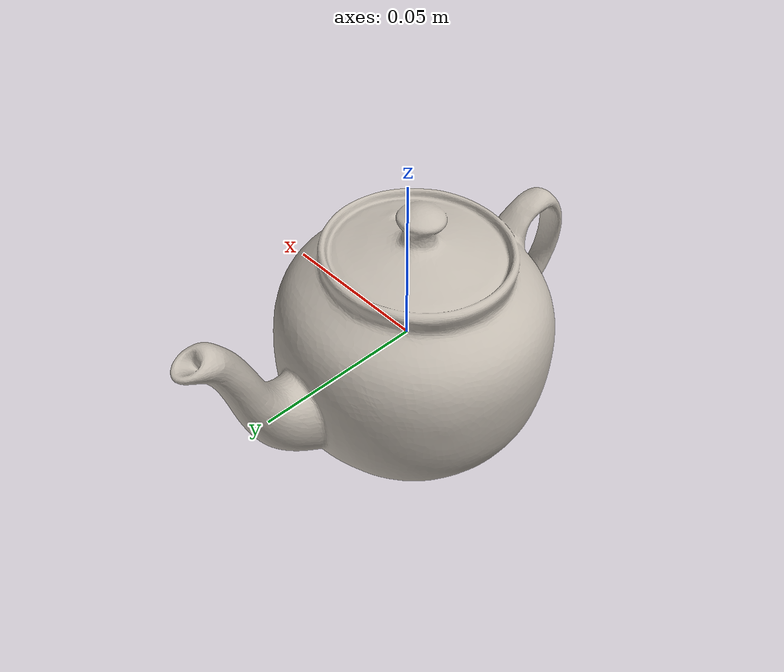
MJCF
<mujoco model="teapot_3">
  <asset>
    <mesh file="visual/model_normalized_0.obj" name="model_normalized_0_vis" scale="0.125 0.125 0.125" refquat="-0.5555702330196022 0.0 0.0 0.8314696123025451"/>
    <mesh file="collision/model_normalized_collision_22.obj" name="model_normalized_collision_22._coll" scale="0.125 0.125 0.125" refquat="-0.5555702330196022 0.0 0.0 0.8314696123025451"/>
    <mesh file="collision/model_normalized_collision_23.obj" name="model_normalized_collision_23._coll" scale="0.125 0.125 0.125" refquat="-0.5555702330196022 0.0 0.0 0.8314696123025451"/>
    <mesh file="collision/model_normalized_collision_21.obj" name="model_normalized_collision_21._coll" scale="0.125 0.125 0.125" refquat="-0.5555702330196022 0.0 0.0 0.8314696123025451"/>
    <mesh file="collision/model_normalized_collision_20.obj" name="model_normalized_collision_20._coll" scale="0.125 0.125 0.125" refquat="-0.5555702330196022 0.0 0.0 0.8314696123025451"/>
    <mesh file="collision/model_normalized_collision_24.obj" name="model_normalized_collision_24._coll" scale="0.125 0.125 0.125" refquat="-0.5555702330196022 0.0 0.0 0.8314696123025451"/>
    <mesh file="collision/model_normalized_collision_30.obj" name="model_normalized_collision_30._coll" scale="0.125 0.125 0.125" refquat="-0.5555702330196022 0.0 0.0 0.8314696123025451"/>
    <mesh file="collision/model_normalized_collision_18.obj" name="model_normalized_collision_18._coll" scale="0.125 0.125 0.125" refquat="-0.5555702330196022 0.0 0.0 0.8314696123025451"/>
    <mesh file="collision/model_normalized_collision_19.obj" name="model_normalized_collision_19._coll" scale="0.125 0.125 0.125" refquat="-0.5555702330196022 0.0 0.0 0.8314696123025451"/>
    <mesh file="collision/model_normalized_collision_31.obj" name="model_normalized_collision_31._coll" scale="0.125 0.125 0.125" refquat="-0.5555702330196022 0.0 0.0 0.8314696123025451"/>
    <mesh file="collision/model_normalized_collision_25.obj" name="model_normalized_collision_25._coll" scale="0.125 0.125 0.125" refquat="-0.5555702330196022 0.0 0.0 0.8314696123025451"/>
    <mesh file="collision/model_normalized_collision_27.obj" name="model_normalized_collision_27._coll" scale="0.125 0.125 0.125" refquat="-0.5555702330196022 0.0 0.0 0.8314696123025451"/>
    <mesh file="collision/model_normalized_collision_26.obj" name="model_normalized_collision_26._coll" scale="0.125 0.125 0.125" refquat="-0.5555702330196022 0.0 0.0 0.8314696123025451"/>
    <mesh file="collision/model_normalized_collision_9.obj" name="model_normalized_collision_9._coll" scale="0.125 0.125 0.125" refquat="-0.5555702330196022 0.0 0.0 0.8314696123025451"/>
    <mesh file="collision/model_normalized_collision_8.obj" name="model_normalized_collision_8._coll" scale="0.125 0.125 0.125" refquat="-0.5555702330196022 0.0 0.0 0.8314696123025451"/>
    <mesh file="collision/model_normalized_collision_6.obj" name="model_normalized_collision_6._coll" scale="0.125 0.125 0.125" refquat="-0.5555702330196022 0.0 0.0 0.8314696123025451"/>
    <mesh file="collision/model_normalized_collision_7.obj" name="model_normalized_collision_7._coll" scale="0.125 0.125 0.125" refquat="-0.5555702330196022 0.0 0.0 0.8314696123025451"/>
    <mesh file="collision/model_normalized_collision_5.obj" name="model_normalized_collision_5._coll" scale="0.125 0.125 0.125" refquat="-0.5555702330196022 0.0 0.0 0.8314696123025451"/>
    <mesh file="collision/model_normalized_collision_4.obj" name="model_normalized_collision_4._coll" scale="0.125 0.125 0.125" refquat="-0.5555702330196022 0.0 0.0 0.8314696123025451"/>
    <mesh file="collision/model_normalized_collision_0.obj" name="model_normalized_collision_0._coll" scale="0.125 0.125 0.125" refquat="-0.5555702330196022 0.0 0.0 0.8314696123025451"/>
    <mesh file="collision/model_normalized_collision_1.obj" name="model_normalized_collision_1._coll" scale="0.125 0.125 0.125" refquat="-0.5555702330196022 0.0 0.0 0.8314696123025451"/>
    <mesh file="collision/model_normalized_collision_3.obj" name="model_normalized_collision_3._coll" scale="0.125 0.125 0.125" refquat="-0.5555702330196022 0.0 0.0 0.8314696123025451"/>
    <mesh file="collision/model_normalized_collision_2.obj" name="model_normalized_collision_2._coll" scale="0.125 0.125 0.125" refquat="-0.5555702330196022 0.0 0.0 0.8314696123025451"/>
    <mesh file="collision/model_normalized_collision_17.obj" name="model_normalized_collision_17._coll" scale="0.125 0.125 0.125" refquat="-0.5555702330196022 0.0 0.0 0.8314696123025451"/>
    <mesh file="collision/model_normalized_collision_16.obj" name="model_normalized_collision_16._coll" scale="0.125 0.125 0.125" refquat="-0.5555702330196022 0.0 0.0 0.8314696123025451"/>
    <mesh file="collision/model_normalized_collision_28.obj" name="model_normalized_collision_28._coll" scale="0.125 0.125 0.125" refquat="-0.5555702330196022 0.0 0.0 0.8314696123025451"/>
    <mesh file="collision/model_normalized_collision_14.obj" name="model_normalized_collision_14._coll" scale="0.125 0.125 0.125" refquat="-0.5555702330196022 0.0 0.0 0.8314696123025451"/>
    <mesh file="collision/model_normalized_collision_15.obj" name="model_normalized_collision_15._coll" scale="0.125 0.125 0.125" refquat="-0.5555702330196022 0.0 0.0 0.8314696123025451"/>
    <mesh file="collision/model_normalized_collision_29.obj" name="model_normalized_collision_29._coll" scale="0.125 0.125 0.125" refquat="-0.5555702330196022 0.0 0.0 0.8314696123025451"/>
    <mesh file="collision/model_normalized_collision_11.obj" name="model_normalized_collision_11._coll" scale="0.125 0.125 0.125" refquat="-0.5555702330196022 0.0 0.0 0.8314696123025451"/>
    <mesh file="collision/model_normalized_collision_10.obj" name="model_normalized_collision_10._coll" scale="0.125 0.125 0.125" refquat="-0.5555702330196022 0.0 0.0 0.8314696123025451"/>
    <mesh file="collision/model_normalized_collision_12.obj" name="model_normalized_collision_12._coll" scale="0.125 0.125 0.125" refquat="-0.5555702330196022 0.0 0.0 0.8314696123025451"/>
    <mesh file="collision/model_normalized_collision_13.obj" name="model_normalized_collision_13._coll" scale="0.125 0.125 0.125" refquat="-0.5555702330196022 0.0 0.0 0.8314696123025451"/>
    <texture type="2d" name="image0" file="visual/image0.png"/>
    <material name="default.010" texture="image0" specular="0.5" shininess="0.5625"/>
  </asset>
  <worldbody>
  <body>
      <body name="object">
        <geom solimp="0.998 0.998 0.001" solref="0.001 1" density="100" friction="0.95 0.3 0.1" type="mesh" mesh="model_normalized_0_vis" conaffinity="0" contype="0" group="1" material="default.010"/>
        <geom solimp="0.998 0.998 0.001" solref="0.001 1" density="100" friction="0.95 0.3 0.1" type="mesh" mesh="model_normalized_collision_22._coll" group="0" rgba="0.8 0.8 0.8 0.0"/>
        <geom solimp="0.998 0.998 0.001" solref="0.001 1" density="100" friction="0.95 0.3 0.1" type="mesh" mesh="model_normalized_collision_23._coll" group="0" rgba="0.8 0.8 0.8 0.0"/>
        <geom solimp="0.998 0.998 0.001" solref="0.001 1" density="100" friction="0.95 0.3 0.1" type="mesh" mesh="model_normalized_collision_21._coll" group="0" rgba="0.8 0.8 0.8 0.0"/>
        <geom solimp="0.998 0.998 0.001" solref="0.001 1" density="100" friction="0.95 0.3 0.1" type="mesh" mesh="model_normalized_collision_20._coll" group="0" rgba="0.8 0.8 0.8 0.0"/>
        <geom solimp="0.998 0.998 0.001" solref="0.001 1" density="100" friction="0.95 0.3 0.1" type="mesh" mesh="model_normalized_collision_24._coll" group="0" rgba="0.8 0.8 0.8 0.0"/>
        <geom solimp="0.998 0.998 0.001" solref="0.001 1" density="100" friction="0.95 0.3 0.1" type="mesh" mesh="model_normalized_collision_30._coll" group="0" rgba="0.8 0.8 0.8 0.0"/>
        <geom solimp="0.998 0.998 0.001" solref="0.001 1" density="100" friction="0.95 0.3 0.1" type="mesh" mesh="model_normalized_collision_18._coll" group="0" rgba="0.8 0.8 0.8 0.0"/>
        <geom solimp="0.998 0.998 0.001" solref="0.001 1" density="100" friction="0.95 0.3 0.1" type="mesh" mesh="model_normalized_collision_19._coll" group="0" rgba="0.8 0.8 0.8 0.0"/>
        <geom solimp="0.998 0.998 0.001" solref="0.001 1" density="100" friction="0.95 0.3 0.1" type="mesh" mesh="model_normalized_collision_31._coll" group="0" rgba="0.8 0.8 0.8 0.0"/>
        <geom solimp="0.998 0.998 0.001" solref="0.001 1" density="100" friction="0.95 0.3 0.1" type="mesh" mesh="model_normalized_collision_25._coll" group="0" rgba="0.8 0.8 0.8 0.0"/>
        <geom solimp="0.998 0.998 0.001" solref="0.001 1" density="100" friction="0.95 0.3 0.1" type="mesh" mesh="model_normalized_collision_27._coll" group="0" rgba="0.8 0.8 0.8 0.0"/>
        <geom solimp="0.998 0.998 0.001" solref="0.001 1" density="100" friction="0.95 0.3 0.1" type="mesh" mesh="model_normalized_collision_26._coll" group="0" rgba="0.8 0.8 0.8 0.0"/>
        <geom solimp="0.998 0.998 0.001" solref="0.001 1" density="100" friction="0.95 0.3 0.1" type="mesh" mesh="model_normalized_collision_9._coll" group="0" rgba="0.8 0.8 0.8 0.0"/>
        <geom solimp="0.998 0.998 0.001" solref="0.001 1" density="100" friction="0.95 0.3 0.1" type="mesh" mesh="model_normalized_collision_8._coll" group="0" rgba="0.8 0.8 0.8 0.0"/>
        <geom solimp="0.998 0.998 0.001" solref="0.001 1" density="100" friction="0.95 0.3 0.1" type="mesh" mesh="model_normalized_collision_6._coll" group="0" rgba="0.8 0.8 0.8 0.0"/>
        <geom solimp="0.998 0.998 0.001" solref="0.001 1" density="100" friction="0.95 0.3 0.1" type="mesh" mesh="model_normalized_collision_7._coll" group="0" rgba="0.8 0.8 0.8 0.0"/>
        <geom solimp="0.998 0.998 0.001" solref="0.001 1" density="100" friction="0.95 0.3 0.1" type="mesh" mesh="model_normalized_collision_5._coll" group="0" rgba="0.8 0.8 0.8 0.0"/>
        <geom solimp="0.998 0.998 0.001" solref="0.001 1" density="100" friction="0.95 0.3 0.1" type="mesh" mesh="model_normalized_collision_4._coll" group="0" rgba="0.8 0.8 0.8 0.0"/>
        <geom solimp="0.998 0.998 0.001" solref="0.001 1" density="100" friction="0.95 0.3 0.1" type="mesh" mesh="model_normalized_collision_0._coll" group="0" rgba="0.8 0.8 0.8 0.0"/>
        <geom solimp="0.998 0.998 0.001" solref="0.001 1" density="100" friction="0.95 0.3 0.1" type="mesh" mesh="model_normalized_collision_1._coll" group="0" rgba="0.8 0.8 0.8 0.0"/>
        <geom solimp="0.998 0.998 0.001" solref="0.001 1" density="100" friction="0.95 0.3 0.1" type="mesh" mesh="model_normalized_collision_3._coll" group="0" rgba="0.8 0.8 0.8 0.0"/>
        <geom solimp="0.998 0.998 0.001" solref="0.001 1" density="100" friction="0.95 0.3 0.1" type="mesh" mesh="model_normalized_collision_2._coll" group="0" rgba="0.8 0.8 0.8 0.0"/>
        <geom solimp="0.998 0.998 0.001" solref="0.001 1" density="100" friction="0.95 0.3 0.1" type="mesh" mesh="model_normalized_collision_17._coll" group="0" rgba="0.8 0.8 0.8 0.0"/>
        <geom solimp="0.998 0.998 0.001" solref="0.001 1" density="100" friction="0.95 0.3 0.1" type="mesh" mesh="model_normalized_collision_16._coll" group="0" rgba="0.8 0.8 0.8 0.0"/>
        <geom solimp="0.998 0.998 0.001" solref="0.001 1" density="100" friction="0.95 0.3 0.1" type="mesh" mesh="model_normalized_collision_28._coll" group="0" rgba="0.8 0.8 0.8 0.0"/>
        <geom solimp="0.998 0.998 0.001" solref="0.001 1" density="100" friction="0.95 0.3 0.1" type="mesh" mesh="model_normalized_collision_14._coll" group="0" rgba="0.8 0.8 0.8 0.0"/>
        <geom solimp="0.998 0.998 0.001" solref="0.001 1" density="100" friction="0.95 0.3 0.1" type="mesh" mesh="model_normalized_collision_15._coll" group="0" rgba="0.8 0.8 0.8 0.0"/>
        <geom solimp="0.998 0.998 0.001" solref="0.001 1" density="100" friction="0.95 0.3 0.1" type="mesh" mesh="model_normalized_collision_29._coll" group="0" rgba="0.8 0.8 0.8 0.0"/>
        <geom solimp="0.998 0.998 0.001" solref="0.001 1" density="100" friction="0.95 0.3 0.1" type="mesh" mesh="model_normalized_collision_11._coll" group="0" rgba="0.8 0.8 0.8 0.0"/>
        <geom solimp="0.998 0.998 0.001" solref="0.001 1" density="100" friction="0.95 0.3 0.1" type="mesh" mesh="model_normalized_collision_10._coll" group="0" rgba="0.8 0.8 0.8 0.0"/>
        <geom solimp="0.998 0.998 0.001" solref="0.001 1" density="100" friction="0.95 0.3 0.1" type="mesh" mesh="model_normalized_collision_12._coll" group="0" rgba="0.8 0.8 0.8 0.0"/>
        <geom solimp="0.998 0.998 0.001" solref="0.001 1" density="100" friction="0.95 0.3 0.1" type="mesh" mesh="model_normalized_collision_13._coll" group="0" rgba="0.8 0.8 0.8 0.0"/>
      </body>
      <site rgba="0 0 0 0" size="0.005" pos="0.0017055913344224544 0.0010549077519296027 -0.0414405825" name="bottom_site"/>
      <site rgba="0 0 0 0" size="0.005" pos="0.0017055913344224544 0.0010549077519296027 0.040701329999999994" name="top_site"/>
      <site rgba="0 0 0 0" size="0.005" pos="0.04372283690437779 0.06890706707119582 -0.00036962625000000124" name="horizontal_radius_site"/>
    </body>
    </worldbody>
</mujoco>
